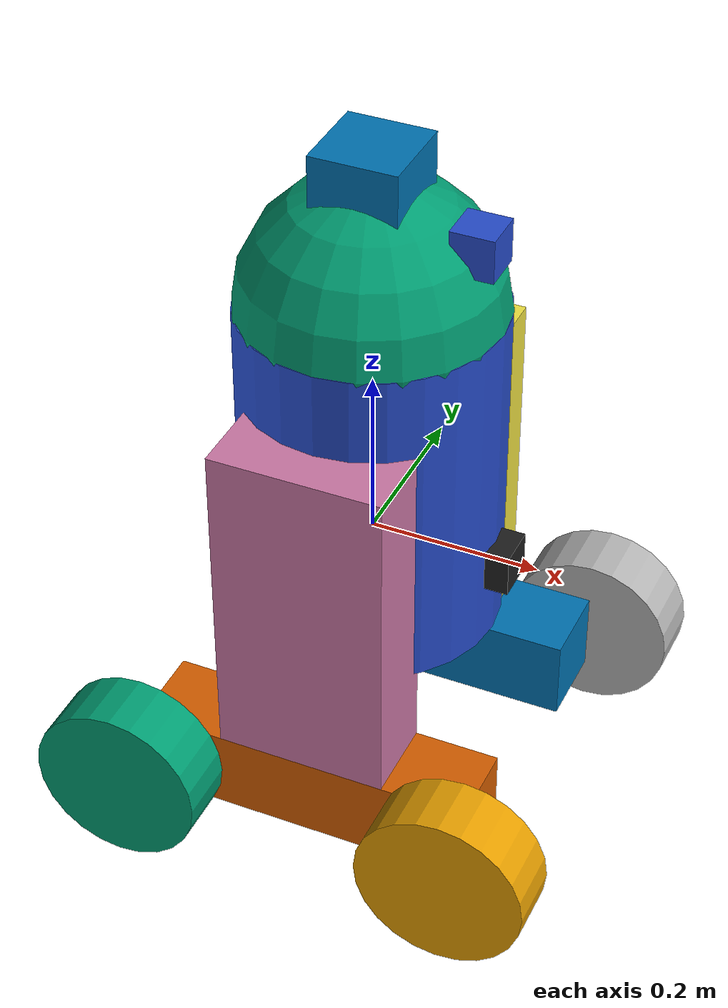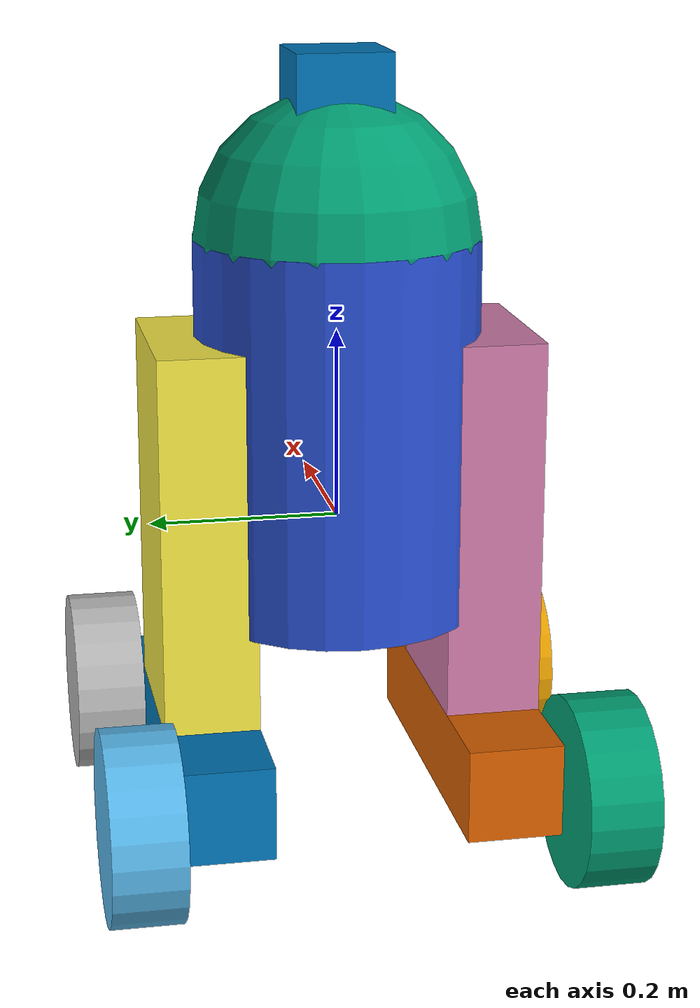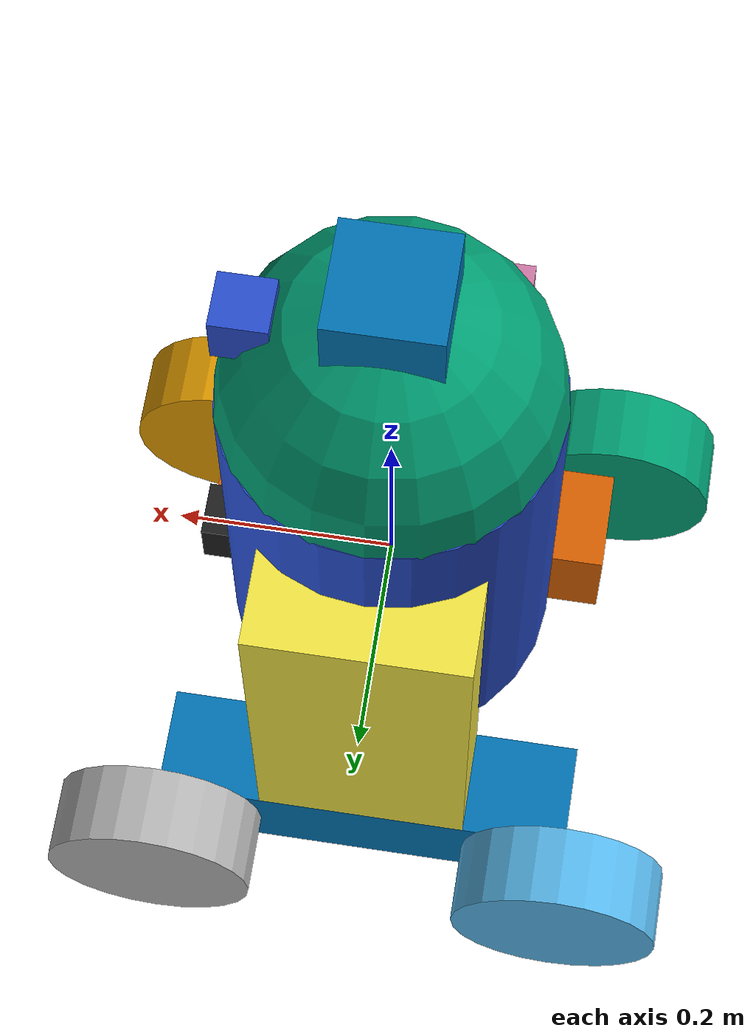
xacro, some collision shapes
<?xml version='1.0'?>
<robot name="my_robot" xmlns:xacro="http://www.ros.org/wiki/xacro">
  <xacro:include filename="$(find my_robot)/urdf/my_robot.gazebo" />
  <link name="robot_footprint">
  </link>

  <joint name="robot_footprint_joint" type="fixed">
    <origin xyz="0 0 0" rpy="0 0 0"/>
	<parent link="robot_footprint"/>
	<child link="chassis"/>
  </joint>

  <link name="chassis">
	<inertial>
	  <mass value="5"/>
          <origin xyz="0.0 0 0.1" rpy=" 0 0 0"/>
           <inertia
             ixx="0.1" ixy="0" ixz="0"
             iyy="0.1" iyz="0"
             izz="0.1"
          />
        </inertial>
	<visual>
	  <origin xyz="0 0 0.1" rpy="0 0 0"/>
	  <geometry>
	    <cylinder length="0.4" radius="0.15"/>
	  </geometry>
	</visual>
	<collision>
	  <origin xyz="0 0 0.1" rpy="0 0 0"/>
	  <geometry>
	    <cylinder length="0.4" radius="0.15"/>
	  </geometry>
	</collision>
  </link>

  <link name="head">
	<visual>
	  <origin xyz="0 0 0" rpy="0 0 0"/>
	  <geometry>
	    <sphere radius="0.15"/>
	  </geometry>
	</visual>
	<collision>
	  <origin xyz="0 0 0" rpy="0 0 0"/>
	  <geometry>
	    <sphere radius="0.15"/>
	  </geometry>
	</collision>
  </link>

  <link name="left_leg">
	<inertial>
	  <mass value="0.1"/>
          <origin xyz="0.0 0 0" rpy=" 0 0 0"/>
           <inertia
             ixx="0.1" ixy="0" ixz="0"
             iyy="0.1" iyz="0"
             izz="0.1"
          />
        </inertial>
	<visual>
	  <origin xyz="0 0 0" rpy="0 0 0"/>
	  <geometry>
	    <box size="0.2 0.1 0.4"/>
	  </geometry>
	</visual>
	<collision>
	  <origin xyz="0 0 0" rpy="0 0 0"/>
	  <geometry>
	    <box size="0.2 0.1 0.4"/>
	  </geometry>
	</collision>
  </link>
  <link name="left_leg_base">
	<inertial>
	  <mass value="0.1"/>
          <origin xyz="0.0 0 0" rpy=" 0 0 0"/>
           <inertia
             ixx="0.1" ixy="0" ixz="0"
             iyy="0.1" iyz="0"
             izz="0.1"
          />
        </inertial>
	<visual name="left_leg_base_visual">
	  <origin xyz="0 0 0" rpy="0 0 0"/>
	  <geometry>
	    <box size="0.4 0.1 0.1"/>
	  </geometry>
	</visual>
	<collision name="left_leg_base_collision">
	  <origin xyz="0 0 0" rpy="0 0 0"/>
	  <geometry>
	    <box size="0.4 0.1 0.1"/>
	  </geometry>
	</collision>
  </link>

  <link name="right_leg_base">
	<inertial>
	  <mass value="0.1"/>
          <origin xyz="0.0 0 0" rpy=" 0 0 0"/>
           <inertia
             ixx="0.1" ixy="0" ixz="0"
             iyy="0.1" iyz="0"
             izz="0.1"
          />
        </inertial>
	<visual name="right_leg_base_visual">
	  <origin xyz="0 0 0" rpy="0 0 0"/>
	  <geometry>
	    <box size="0.4 0.1 0.1"/>
	  </geometry>
	</visual>
	<collision name="right_leg_base_collision">
	  <origin xyz="0 0 0" rpy="0 0 0"/>
	  <geometry>
	    <box size="0.4 0.1 0.1"/>
	  </geometry>
	</collision>
  </link>

  <link name="right_leg">
	<inertial>
	  <mass value="0.1"/>
          <origin xyz="0.0 0 0" rpy=" 0 0 0"/>
           <inertia
             ixx="0.1" ixy="0" ixz="0"
             iyy="0.1" iyz="0"
             izz="0.1"
          />
        </inertial>
	<visual>
	  <origin xyz="0 0 0" rpy="0 0 0"/>
	  <geometry>
	    <box size="0.2 0.1 0.4"/>
	  </geometry>
	</visual>
	<collision>
	  <origin xyz="0 0 0" rpy="0 0 0"/>
	  <geometry>
	    <box size="0.2 0.1 0.4"/>
	  </geometry>
	</collision>
  </link>

  <link name="left_wheel">
	<inertial>
	  <mass value="1"/>
          <origin xyz="0.0 0 0" rpy=" 0 0 0"/>
          <inertia
             ixx="0.1" ixy="0" ixz="0"
             iyy="0.1" iyz="0"
             izz="0.1"
          />
        </inertial>
	<visual>
	  <origin xyz="0 0 0" rpy="0 1.5707 1.5707"/>
	  <geometry>
	    <cylinder length="0.075" radius="0.1"/>
	  </geometry>
	</visual>
	<collision>
	  <origin xyz="0 0 0" rpy="0 1.5707 1.5707"/>
	  <geometry>
	    <cylinder length="0.075" radius="0.1"/>
	  </geometry>
	</collision>
  </link>

  <link name="right_wheel">
	<inertial>
	  <mass value="1"/>
          <origin xyz="0.0 0 0" rpy=" 0 0 0"/>
          <inertia
             ixx="0.1" ixy="0" ixz="0"
             iyy="0.1" iyz="0"
             izz="0.1"
          />
        </inertial>
	<visual>
	  <origin xyz="0 0 0" rpy="0 1.5707 1.5707"/>
	  <geometry>
	    <cylinder length="0.075" radius="0.1"/>
	  </geometry>
	</visual>
	<collision>
	  <origin xyz="0 0 0" rpy="0 1.5707 1.5707"/>
	  <geometry>
	    <cylinder length="0.075" radius="0.1"/>
	  </geometry>
	</collision>
  </link>

  <link name="left_wheel_back">
	<inertial>
	  <mass value="1"/>
          <origin xyz="0.0 0 0" rpy=" 0 0 0"/>
          <inertia
             ixx="0.1" ixy="0" ixz="0"
             iyy="0.1" iyz="0"
             izz="0.1"
          />
        </inertial>
	<visual>
	  <origin xyz="0 0 0" rpy="0 1.5707 1.5707"/>
	  <geometry>
	    <cylinder length="0.075" radius="0.1"/>
	  </geometry>
	</visual>
	<collision>
	  <origin xyz="0 0 0" rpy="0 1.5707 1.5707"/>
	  <geometry>
	    <cylinder length="0.075" radius="0.1"/>
	  </geometry>
	</collision>
  </link>

  <link name="right_wheel_back">
	<inertial>
	  <mass value="1"/>
          <origin xyz="0.0 0 0" rpy=" 0 0 0"/>
          <inertia
             ixx="0.1" ixy="0" ixz="0"
             iyy="0.1" iyz="0"
             izz="0.1"
          />
        </inertial>
	<visual>
	  <origin xyz="0 0 0" rpy="0 1.5707 1.5707"/>
	  <geometry>
	    <cylinder length="0.075" radius="0.1"/>
	  </geometry>
	</visual>
	<collision>
	  <origin xyz="0 0 0" rpy="0 1.5707 1.5707"/>
	  <geometry>
	    <cylinder length="0.075" radius="0.1"/>
	  </geometry>
	</collision>
  </link>
  <link name="camera">
	<inertial>
	  <mass value="0.1"/>
          <origin xyz="0.0 0 0.0" rpy=" 0 0 0"/>
           <inertia
             ixx="0.1e-6" ixy="0" ixz="0"
             iyy="0.1e-6" iyz="0"
             izz="0.1e-6"
          />
        </inertial>
	<visual>
	  <origin xyz="0 0 0" rpy="0 0 0"/>
	  <geometry>
	    <box size="0.05 0.05 0.05"/>
	  </geometry>
	</visual>
	<collision>
	  <origin xyz="0 0 0" rpy="0 0 0"/>
	  <geometry>
	    <box size="0.05 0.05 0.05"/>
	  </geometry>
	</collision>
  </link>

  <link name="hokuyo">
	<inertial>
	  <mass value="1e-5"/>
          <origin xyz="0.0 0 0.0" rpy=" 0 0 0"/>
           <inertia
             ixx="0.1e-6" ixy="0" ixz="0"
             iyy="0.1e-6" iyz="0"
             izz="0.1e-6"
          />
        </inertial>
	<visual>
	  <origin xyz="0 0 0" rpy="0 0 0"/>
	  <geometry>
            <mesh filename="package://my_robot/meshes/hokuyo.dae"/>
	  </geometry>
	</visual>
	<collision>
	  <origin xyz="0 0 0" rpy="0 0 0"/>
	  <geometry>
	    <box size="0.1 0.1 0.1"/>
	  </geometry>
	</collision>
  </link>

  <link name="box">
	<visual>
	  <origin xyz="0 0 0" rpy="0 0 0"/>
	  <geometry>
	    <box size="0.05 0.05 0.05"/>
	  </geometry>
	</visual>
	<collision>
	  <origin xyz="0 0 0" rpy="0 0 0"/>
	  <geometry>
	    <box size="0.05 0.05 0.05"/>
	  </geometry>
	</collision>
  </link>

  <joint type="fixed" name="left_leg_joint">
    <origin xyz = "0 0.15 0" rpy="0 0 0"/>
    <child link = "left_leg"/>
    <parent link = "chassis"/>
    <axis xyz="0 1 0" rpy="0 0 0"/>
  </joint>

  <joint type="fixed" name="left_leg_base_joint">
    <origin xyz = "0 0 -0.25" rpy="0 0 0"/>
    <child link = "left_leg_base"/>
    <parent link = "left_leg"/>
    <axis xyz="0 1 0" rpy="0 0 0"/>
  </joint>

  <joint type="fixed" name="right_leg_joint">
    <origin xyz = "0 -0.15 0" rpy="0 0 0"/>
    <child link = "right_leg"/>
    <parent link = "chassis"/>
    <axis xyz="0 0 1" rpy="0 0 0"/>
  </joint>

  <joint type="fixed" name="right_leg_base_joint">
    <origin xyz = "0 0 -0.25" rpy="0 0 0"/>
    <child link = "right_leg_base"/>
    <parent link = "right_leg"/>
    <axis xyz="0 0 1" rpy="0 0 0"/>
  </joint>

  <joint type="fixed" name="head_joint">
    <origin xyz = "0 0 0.3" rpy="0 0 0"/>
    <child link = "head"/>
    <parent link = "chassis"/>
    <axis xyz="0 0 1" rpy="0 0 0"/>
  </joint>

  <joint type="continuous" name="left_wheel_hinge">
    <origin xyz = "0.2 0.0875 0" rpy="0 0 0"/>
    <child link = "left_wheel"/>
    <parent link = "left_leg_base"/>
    <axis xyz="0 1 0" rpy="0 0 0"/>
    <limit effort="10000" velocity="1000"/>
    <dynamics damping="0.5" friction="2.0"/>
  </joint>

  <joint type="continuous" name="right_wheel_hinge">
    <origin xyz = "0.2 -0.0875 0" rpy="0 0 0"/>
    <child link = "right_wheel"/>
    <parent link = "right_leg_base"/>
    <axis xyz="0 1 0" rpy="0 0 0"/>
    <limit effort="10000" velocity="1000"/>
    <dynamics damping="0.5" friction="2.0"/>
  </joint>

  <joint type="continuous" name="left_wheel_back_hinge">
    <origin xyz = "-0.2 0.0875 0" rpy="0 0 0"/>
    <child link = "left_wheel_back"/>
    <parent link = "left_leg_base"/>
    <axis xyz="0 1 0" rpy="0 0 0"/>
    <limit effort="10000" velocity="1000"/>
    <dynamics damping="0.1" friction="0.5"/>
  </joint>

  <joint type="continuous" name="right_wheel_back_hinge">
    <origin xyz = "-0.2 -0.0875 0" rpy="0 0 0"/>
    <child link = "right_wheel_back"/>
    <parent link = "right_leg_base"/>
    <axis xyz="0 1 0" rpy="0 0 0"/>
    <limit effort="10000" velocity="1000"/>
    <dynamics damping="0.1" friction="0.5"/>
  </joint>

  <joint type="fixed" name="camera_joint">
    <origin xyz = "0.15 0 0" rpy="0 0 0"/>
    <child link = "camera"/>
    <parent link = "chassis"/>
    <axis xyz="1 0 0" rpy="0 0 0"/>
  </joint>

  <joint type="fixed" name="box_joint">
    <origin xyz = "0.12 0 0.1" rpy="0 0 0"/>
    <child link = "box"/>
    <parent link = "head"/>
    <axis xyz="1 0 0" rpy="0 0 0"/>
  </joint>

  <joint type="fixed" name="hokuyo_joint">
    <origin xyz = "0 0 0.14" rpy="0 0 0"/>
    <child link = "hokuyo"/>
    <parent link = "head"/>
    <axis xyz="0 0 1" rpy="0 0 0"/>
  </joint>

  <gazebo reference="chassis">
   <material>Gazebo/Blue</material>
  </gazebo>

  <gazebo reference="box">
   <material>Gazebo/Blue</material>
  </gazebo>

  <gazebo reference="camera">
   <material>Gazebo/Black</material>
  </gazebo>

</robot>
